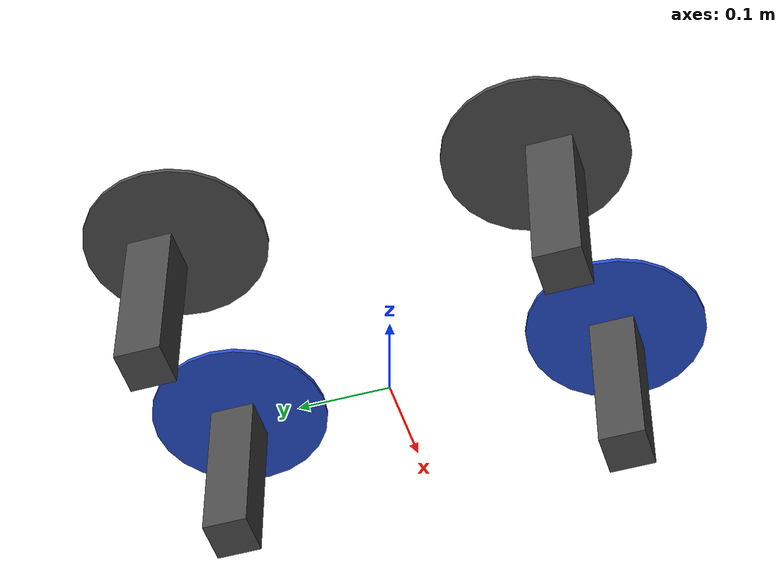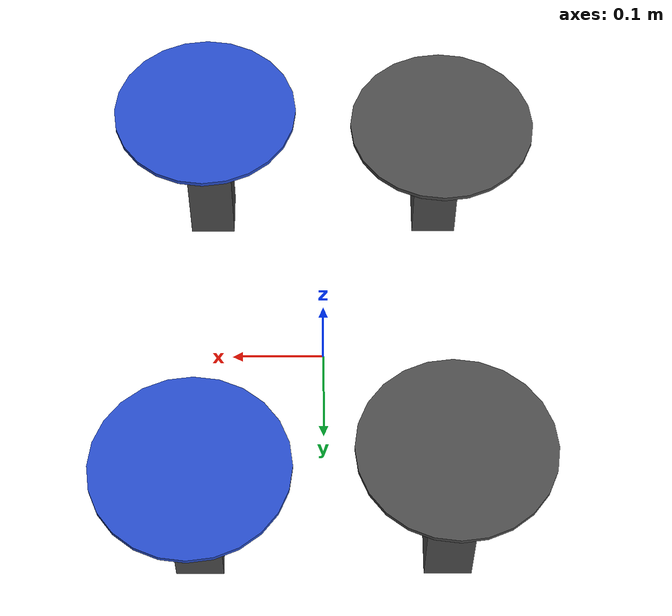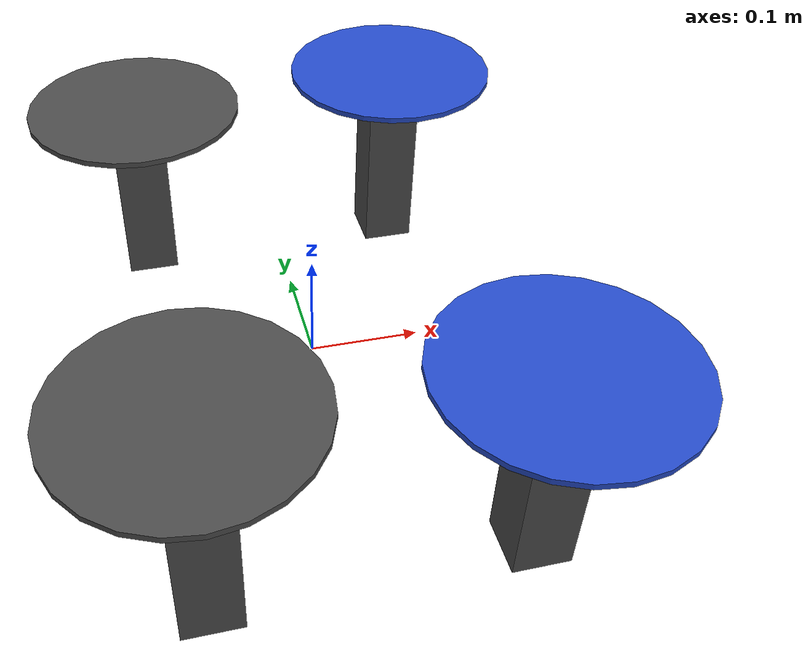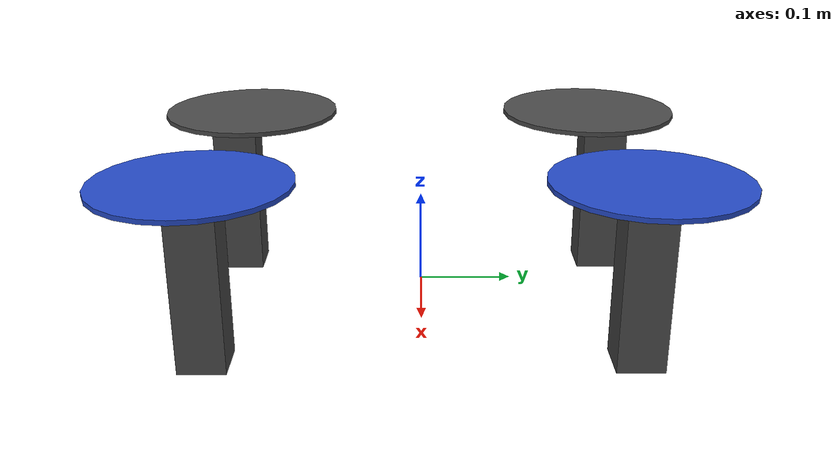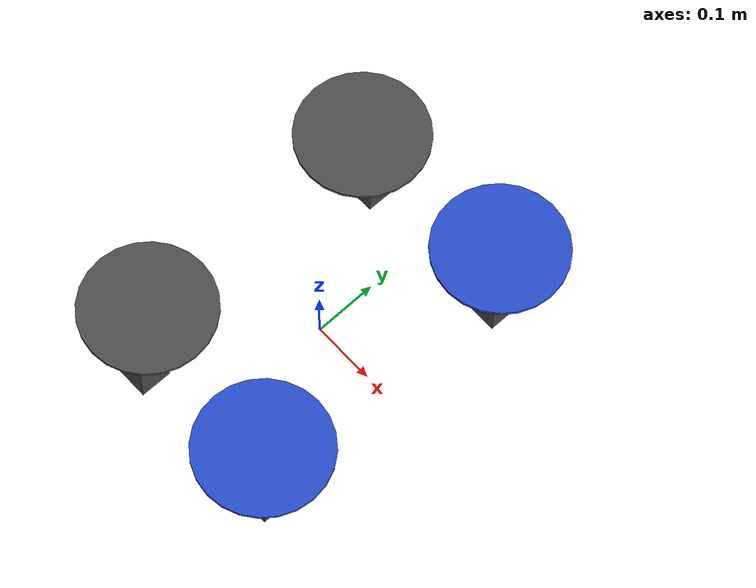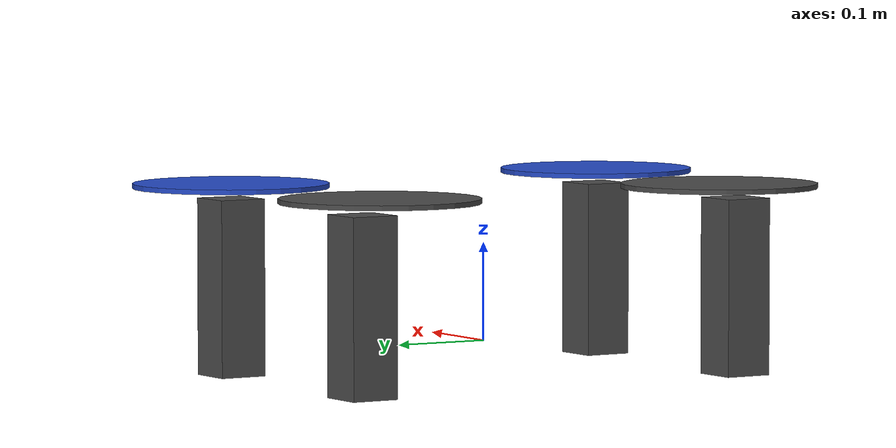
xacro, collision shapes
<?xml version="1.0"?>
<robot name="iris" xmlns:xacro="http://www.ros.org/wiki/xacro">

  <link name="base_footprint"/>

  <!-- Fixed joint between base_footprint and base_link -->
  <joint name="base_joint" type="fixed">
      <origin xyz="0.0 0.0 0.135" rpy="0.0 0.0 0.0"/>
      <parent link="base_footprint"/>
      <child link="base_link"/>
      <axis xyz="0.0 0.0 0.0"/>

  </joint>

  <link name="base_link">
    <inertial>
      <mass value="1.5"/>
      <origin xyz="0 0 0" rpy="0 0 0"/>
      <inertia ixx="0.008" ixy="0" ixz="0" iyy="0.015" iyz="0" izz="0.017"/>
    </inertial>
    <collision name="base_link_collision_fl">
      <origin xyz="0.13 0.22 -0.08" rpy="0 0 0"/>
      <geometry>
        <box size="0.05 0.05 0.18"/>
      </geometry>
    </collision>
    <collision name="base_link_collision_fr">
      <origin xyz="0.13 -0.22 -0.08" rpy="0 0 0"/>
      <geometry>
        <box size="0.05 0.05 0.18"/>
      </geometry>
    </collision>
    <collision name="base_link_collision_br">
      <origin xyz="-0.13 -0.22 -0.08" rpy="0 0 0"/>
      <geometry>
        <box size="0.05 0.05 0.18"/>
      </geometry>
    </collision>
    <collision name="base_link_collision_bl">
      <origin xyz="-0.13 0.22 -0.08" rpy="0 0 0"/>
      <geometry>
        <box size="0.05 0.05 0.18"/>
      </geometry>
    </collision>
    <visual name="base_link_visual">
      <geometry>
        <mesh filename="package://iq_sim/models/iris_base/meshes/iris.dae"/>
      </geometry>
      <material name="dark_grey">
        <script>
          <name>Gazebo/DarkGrey</name>
        </script>
      </material>
    </visual>
    <visual name="front_left_leg_visual">
      <origin xyz="0.123 0.22 -0.11" rpy="0 0 0"/>
      <geometry>
        <cylinder radius="0.005" length="0.17"/>
      </geometry>
      <material name="flat_black">
        <script>
          <name>Gazebo/FlatBlack</name>
          <uri>file://media/materials/scripts/gazebo.material</uri>
        </script>
      </material>
    </visual>
    <visual name="front_right_leg_visual">
      <origin xyz="0.123 -0.22 -0.11" rpy="0 0 0"/>
      <geometry>
        <cylinder radius="0.005" length="0.17"/>
      </geometry>
      <material name="flat_black">
        <script>
          <name>Gazebo/FlatBlack</name>
          <uri>file://media/materials/scripts/gazebo.material</uri>
        </script>
      </material>
    </visual>
    <visual name="rear_left_leg_visual">
      <origin xyz="-0.140 0.21 -0.11" rpy="0 0 0"/>
      <geometry>
        <cylinder radius="0.005" length="0.17"/>
      </geometry>
      <material name="flat_black">
        <script>
          <name>Gazebo/FlatBlack</name>
          <uri>file://media/materials/scripts/gazebo.material</uri>
        </script>
      </material>
    </visual>
    <visual name="rear_right_leg_visual">
      <origin xyz="-0.140 -0.21 -0.11" rpy="0 0 0"/>
      <geometry>
        <cylinder radius="0.005" length="0.17"/>
      </geometry>
      <material name="flat_black">
        <script>
          <name>Gazebo/FlatBlack</name>
          <uri>file://media/materials/scripts/gazebo.material</uri>
        </script>
      </material>
    </visual>
  </link>

  <link name="iris/ground_truth/odometry_sensorgt_link">
    <inertial>
      <mass value="0.15"/>
      <origin xyz="0 0 0" rpy="0 0 0"/>
      <inertia ixx="0.0001" ixy="0" ixz="0" iyy="0.0002" iyz="0" izz="0.0002"/>
    </inertial>
  </link>

  <joint name="iris_ground_truth_odometry_sensorgt_joint" type="revolute">
    <parent link="base_link"/>
    <child link="iris/ground_truth/odometry_sensorgt_link"/>
    <origin xyz="0 0 0" rpy="0 0 0"/>
    <axis xyz="0 0 1"/>
    <limit lower="0" upper="0" effort="1000" velocity="1"/>
    <dynamics damping="1.0"/>
  </joint>

  <link name="iris/imu_link">
    <inertial>
      <mass value="0.15"/>
      <origin xyz="0 0 0" rpy="0 0 0"/>
      <inertia ixx="0.00001" ixy="0" ixz="0" iyy="0.00002" iyz="0" izz="0.00002"/>
    </inertial>
    <sensor name="imu_sensor" type="imu">
      <origin xyz="0 0 0" rpy="3.141593 0 0"/>
      <always_on>1</always_on>
      <update_rate>1000.0</update_rate>
    </sensor>
  </link>

  <joint name="iris_imu_joint" type="revolute">
    <parent link="base_link"/>
    <child link="iris/imu_link"/>
    <origin xyz="0 0 0" rpy="0 0 0"/>
    <axis xyz="0 0 1"/>
    <limit lower="0" upper="0" effort="1000" velocity="1"/>
    <dynamics damping="1.0"/>
  </joint>

  <link name="rotor_0">
    <inertial>
      <mass value="0.025"/>
      <origin xyz="0 0 0" rpy="0 0 0"/>
      <inertia ixx="9.75e-06" ixy="0" ixz="0" iyy="0.000166704" iyz="0" izz="0.000167604"/>
    </inertial>
    <collision>
      <geometry>
        <cylinder radius="0.1" length="0.005"/>
      </geometry>
    </collision>
    <visual>
      <geometry>
        <mesh filename="package://iq_sim/models/iris_base/meshes/iris_prop_ccw.dae"/>
      </geometry>
      <material name="blue">
        <script>
          <name>Gazebo/Blue</name>
        </script>
      </material>
    </visual>
  </link>

  <joint name="rotor_0_joint" type="revolute">
    <parent link="base_link"/>
    <child link="rotor_0"/>
    <origin xyz="0.13 -0.22 0.023" rpy="0 0 0"/>
    <axis xyz="0 0 1"/>
    <limit lower="-1e+16" upper="1e+16" effort="1000" velocity="100"/>
    <dynamics damping="0.004"/>
  </joint>

  <link name="rotor_1">
    <inertial>
      <mass value="0.025"/>
      <origin xyz="0 0 0" rpy="0 0 0"/>
      <inertia ixx="9.75e-06" ixy="0" ixz="0" iyy="0.000166704" iyz="0" izz="0.000167604"/>
    </inertial>
    <collision>
      <geometry>
        <cylinder radius="0.1" length="0.005"/>
      </geometry>
    </collision>
    <visual>
      <geometry>
        <mesh filename="package://iq_sim/models/iris_base/meshes/iris_prop_ccw.dae"/>
      </geometry>
      <material name="dark_grey">
        <script>
          <name>Gazebo/DarkGrey</name>
        </script>
      </material>
    </visual>
  </link>

  <joint name="rotor_1_joint" type="revolute">
    <parent link="base_link"/>
    <child link="rotor_1"/>
    <origin xyz="-0.13 0.2 0.023" rpy="0 0 0"/>
    <axis xyz="0 0 1"/>
    <limit lower="-1e+16" upper="1e+16" effort="1000" velocity="100"/>
    <dynamics damping="0.004"/>
  </joint>

  <link name="rotor_2">
    <inertial>
      <mass value="0.025"/>
      <origin xyz="0 0 0" rpy="0 0 0"/>
      <inertia ixx="9.75e-06" ixy="0" ixz="0" iyy="0.000166704" iyz="0" izz="0.000167604"/>
    </inertial>
    <collision>
      <geometry>
        <cylinder radius="0.1" length="0.005"/>
      </geometry>
    </collision>
    <visual>
      <geometry>
        <mesh filename="package://iq_sim/models/iris_base/meshes/iris_prop_cw.dae"/>
      </geometry>
      <material name="blue">
        <script>
          <name>Gazebo/Blue</name>
        </script>
      </material>
    </visual>
  </link>

  <joint name="rotor_2_joint" type="revolute">
    <parent link="base_link"/>
    <child link="rotor_2"/>
    <origin xyz="0.13 0.22 0.023" rpy="0 0 0"/>
    <axis xyz="0 0 1"/>
    <limit lower="-1e+16" upper="1e+16" effort="1000" velocity="100"/>
    <dynamics damping="0.004"/>
  </joint>

  <link name="rotor_3">
    <inertial>
      <mass value="0.025"/>
      <origin xyz="0 0 0" rpy="0 0 0"/>
      <inertia ixx="9.75e-06" ixy="0" ixz="0" iyy="0.000166704" iyz="0" izz="0.000167604"/>
    </inertial>
    <collision>
      <geometry>
        <cylinder radius="0.1" length="0.005"/>
      </geometry>
    </collision>
    <visual>
      <geometry>
        <mesh filename="package://iq_sim/models/iris_base/meshes/iris_prop_cw.dae"/>
      </geometry>
      <material name="dark_grey">
        <script>
          <name>Gazebo/DarkGrey</name>
        </script>
      </material>
    </visual>
  </link>

  <joint name="rotor_3_joint" type="revolute">
    <parent link="base_link"/>
    <child link="rotor_3"/>
    <origin xyz="-0.13 -0.2 0.023" rpy="0 0 0"/>
    <axis xyz="0 0 1"/>
    <limit lower="-1e+16" upper="1e+16" effort="1000" velocity="100"/>
    <dynamics damping="0.004"/>
  </joint>
</robot>
